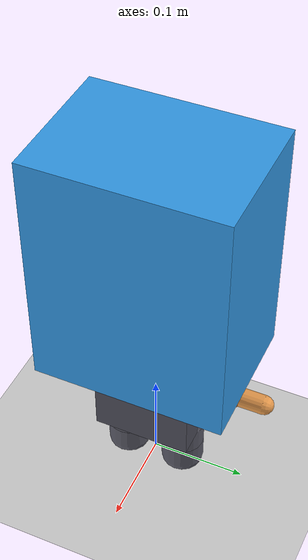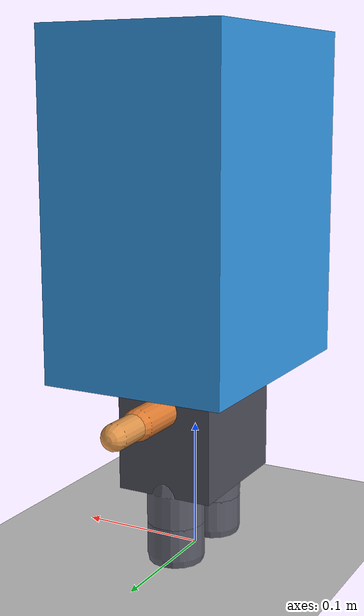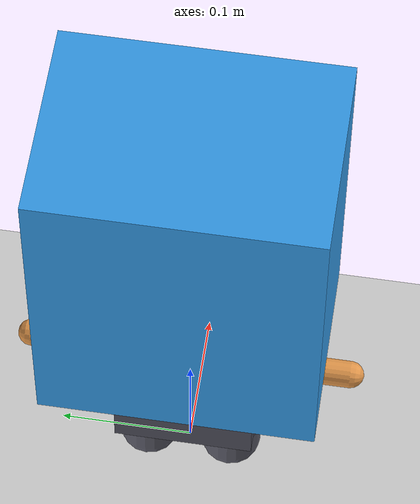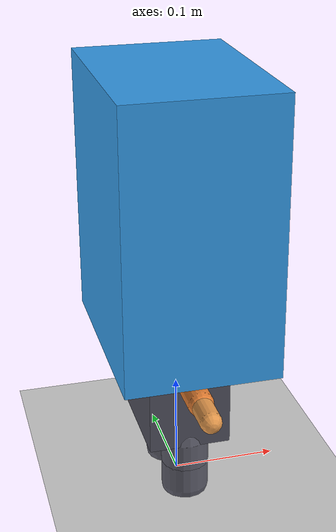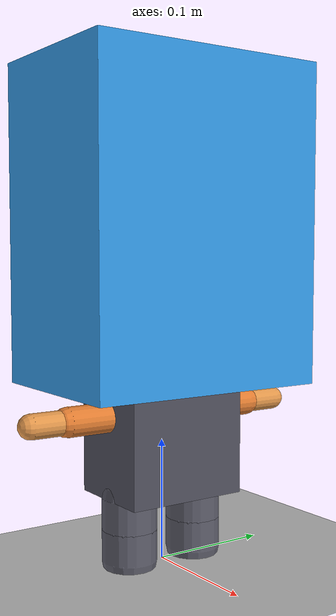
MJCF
<mujoco model="character">
  <compiler angle="radian" autolimits="true"/>
  <option timestep="0.004" gravity="0 0 -9.81"/>

  <default>
    <joint type="hinge" damping="0.3" armature="0.001"/>
    <position kp="12" ctrlrange="-3.1416 3.1416"/>
    <geom contype="0" conaffinity="0" friction="0.9 0.02 0.01"/>
    <default class="foot_collision">
      <geom contype="1" conaffinity="1"/>
    </default>
  </default>

  <worldbody>
    <light pos="0 0 2" dir="0 0 -1" diffuse="1 1 1"/>
    <geom name="floor" type="plane" size="0 0 0.01" contype="1" conaffinity="0" rgba="0.8 0.8 0.8 1"/>

    <body name="body_link" pos="0 0 0.101774">
      <freejoint/>
      <site name="imu" pos="0 0 0"/>
      <geom name="torso_geom" type="box" size="0.038710 0.051613 0.045161" mass="0.53" rgba="0.3 0.3 0.35 1"/>
      <geom name="head_geom" type="box" pos="0 0 0.174194" size="0.071685 0.100358 0.129032" mass="0.45" rgba="0.2 0.6 0.9 1"/>

      <body name="l_hip_yaw_link" pos="0 0.031613 -0.045161">
        <joint name="l_hip_yaw" axis="0 0 1" range="-0.5236 0.5236"/>
        <geom type="sphere" size="0.008" mass="0.02" rgba="0.5 0.5 0.5 1"/>
        <body name="l_hip_roll_link">
          <joint name="l_hip_roll" axis="1 0 0" range="-0.5236 0.5236"/>
          <geom type="sphere" size="0.008" mass="0.03" rgba="0.5 0.5 0.5 1"/>
          <body name="l_hip_pitch_link">
            <joint name="l_hip_pitch" axis="0 1 0" range="-1.5708 0.7854"/>
            <geom name="l_thigh_geom" type="capsule" fromto="0 0 0 0 0 -0.025806" size="0.022581" mass="0.08" rgba="0.35 0.35 0.4 1"/>
            <body name="l_knee_link" pos="0 0 -0.025806">
              <joint name="l_knee" axis="0 1 0" range="-0.1745 2.0944"/>
              <geom name="l_shank_geom" type="capsule" fromto="0 0 0 0 0 -0.025806" size="0.022581" mass="0.06" rgba="0.35 0.35 0.4 1"/>
              <body name="l_foot_link" pos="0 0 -0.025806">
                <geom class="foot_collision" name="l_foot_heel" type="capsule" pos="-0.007038 0 -0.000114" axisangle="1 0 0 1.5708" size="0.003000 0.006323" mass="0.013" rgba="0.15 0.15 0.15 1"/>
                <geom class="foot_collision" name="l_foot_mid"  type="capsule" pos="0 0 -0.002000" axisangle="1 0 0 1.5708" size="0.003000 0.006323" mass="0.014" rgba="0.15 0.15 0.15 1"/>
                <geom class="foot_collision" name="l_foot_toe"  type="capsule" pos="0.007038 0 -0.000114" axisangle="1 0 0 1.5708" size="0.003000 0.006323" mass="0.013" rgba="0.15 0.15 0.15 1"/>
              </body>
            </body>
          </body>
        </body>
      </body>

      <body name="r_hip_yaw_link" pos="0 -0.031613 -0.045161">
        <joint name="r_hip_yaw" axis="0 0 1" range="-0.5236 0.5236"/>
        <geom type="sphere" size="0.008" mass="0.02" rgba="0.5 0.5 0.5 1"/>
        <body name="r_hip_roll_link">
          <joint name="r_hip_roll" axis="1 0 0" range="-0.5236 0.5236"/>
          <geom type="sphere" size="0.008" mass="0.03" rgba="0.5 0.5 0.5 1"/>
          <body name="r_hip_pitch_link">
            <joint name="r_hip_pitch" axis="0 1 0" range="-1.5708 0.7854"/>
            <geom name="r_thigh_geom" type="capsule" fromto="0 0 0 0 0 -0.025806" size="0.022581" mass="0.08" rgba="0.35 0.35 0.4 1"/>
            <body name="r_knee_link" pos="0 0 -0.025806">
              <joint name="r_knee" axis="0 1 0" range="-0.1745 2.0944"/>
              <geom name="r_shank_geom" type="capsule" fromto="0 0 0 0 0 -0.025806" size="0.022581" mass="0.06" rgba="0.35 0.35 0.4 1"/>
              <body name="r_foot_link" pos="0 0 -0.025806">
                <geom class="foot_collision" name="r_foot_heel" type="capsule" pos="-0.007038 0 -0.000114" axisangle="1 0 0 1.5708" size="0.003000 0.006323" mass="0.013" rgba="0.15 0.15 0.15 1"/>
                <geom class="foot_collision" name="r_foot_mid"  type="capsule" pos="0 0 -0.002000" axisangle="1 0 0 1.5708" size="0.003000 0.006323" mass="0.014" rgba="0.15 0.15 0.15 1"/>
                <geom class="foot_collision" name="r_foot_toe"  type="capsule" pos="0.007038 0 -0.000114" axisangle="1 0 0 1.5708" size="0.003000 0.006323" mass="0.013" rgba="0.15 0.15 0.15 1"/>
              </body>
            </body>
          </body>
        </body>
      </body>

      <body name="l_shoulder_yaw_link" pos="0 0.051613 0.022097">
        <joint name="l_shoulder_yaw" axis="0 0 1" range="-1.5708 1.5708"/>
        <geom type="sphere" size="0.006" mass="0.005" rgba="0.6 0.6 0.6 1"/>
        <body name="l_shoulder_roll_link">
          <joint name="l_shoulder_roll" axis="1 0 0" range="-1.5708 1.5708"/>
          <geom type="sphere" size="0.006" mass="0.005" rgba="0.6 0.6 0.6 1"/>
          <body name="l_shoulder_pitch_link">
            <joint name="l_shoulder_pitch" axis="0 1 0" range="-2.618 2.618"/>
            <geom name="l_upper_arm_geom" type="capsule" fromto="0 0 0 0 0.036129 0" size="0.012" mass="0.02" rgba="0.9 0.5 0.2 1"/>
            <body name="l_elbow_link" pos="0 0.036129 0">
              <joint name="l_elbow" axis="0 0 1" range="-0.1 3.0"/>
              <geom name="l_forearm_geom" type="capsule" fromto="0 0 0 0 0.030968 0" size="0.010" mass="0.015" rgba="0.9 0.6 0.3 1"/>
            </body>
          </body>
        </body>
      </body>

      <body name="r_shoulder_yaw_link" pos="0 -0.051613 0.022097">
        <joint name="r_shoulder_yaw" axis="0 0 1" range="-1.5708 1.5708"/>
        <geom type="sphere" size="0.006" mass="0.005" rgba="0.6 0.6 0.6 1"/>
        <body name="r_shoulder_roll_link">
          <joint name="r_shoulder_roll" axis="1 0 0" range="-1.5708 1.5708"/>
          <geom type="sphere" size="0.006" mass="0.005" rgba="0.6 0.6 0.6 1"/>
          <body name="r_shoulder_pitch_link">
            <joint name="r_shoulder_pitch" axis="0 1 0" range="-2.618 2.618"/>
            <geom name="r_upper_arm_geom" type="capsule" fromto="0 0 0 0 -0.036129 0" size="0.012" mass="0.02" rgba="0.9 0.5 0.2 1"/>
            <body name="r_elbow_link" pos="0 -0.036129 0">
              <joint name="r_elbow" axis="0 0 1" range="-0.1 3.0"/>
              <geom name="r_forearm_geom" type="capsule" fromto="0 0 0 0 -0.030968 0" size="0.010" mass="0.015" rgba="0.9 0.6 0.3 1"/>
            </body>
          </body>
        </body>
      </body>
    </body>
  </worldbody>

  <actuator>
    <position name="l_hip_yaw_act" joint="l_hip_yaw"/>
    <position name="l_hip_roll_act" joint="l_hip_roll"/>
    <position name="l_hip_pitch_act" joint="l_hip_pitch"/>
    <position name="l_knee_act" joint="l_knee"/>
    <position name="r_hip_yaw_act" joint="r_hip_yaw"/>
    <position name="r_hip_roll_act" joint="r_hip_roll"/>
    <position name="r_hip_pitch_act" joint="r_hip_pitch"/>
    <position name="r_knee_act" joint="r_knee"/>
    <!-- 2026-08-28 추가: npz_handmove_test 모방학습 파이프라인 검증용(임시).
         STAGE3 확정 전까지는 character.xml에 반영 안 함 — 이 파일 전용. -->
    <position name="l_shoulder_yaw_act" joint="l_shoulder_yaw"/>
    <position name="l_shoulder_roll_act" joint="l_shoulder_roll"/>
    <position name="l_shoulder_pitch_act" joint="l_shoulder_pitch"/>
    <position name="l_elbow_act" joint="l_elbow"/>
    <position name="r_shoulder_yaw_act" joint="r_shoulder_yaw"/>
    <position name="r_shoulder_roll_act" joint="r_shoulder_roll"/>
    <position name="r_shoulder_pitch_act" joint="r_shoulder_pitch"/>
    <position name="r_elbow_act" joint="r_elbow"/>
  </actuator>

  <sensor>
    <gyro site="imu" name="gyro"/>
    <velocimeter site="imu" name="local_linvel"/>
    <accelerometer site="imu" name="accelerometer"/>
    <framezaxis objtype="site" objname="imu" name="upvector"/>
    <framelinvel objtype="site" objname="imu" name="global_linvel"/>
    <frameangvel objtype="site" objname="imu" name="global_angvel"/>
    <framepos objtype="site" objname="imu" name="position"/>
  </sensor>

  <keyframe>
    <!-- 2026-08-28 추가: rest pose (다리 편 자세 + T포즈 팔), qpos 23차원 -->
    <key name="stand" qpos="0 0 0.101774 1 0 0 0  0 0 0 0  0 0 0 0  0 0 0 0  0 0 0 0"/>
  </keyframe>
</mujoco>
